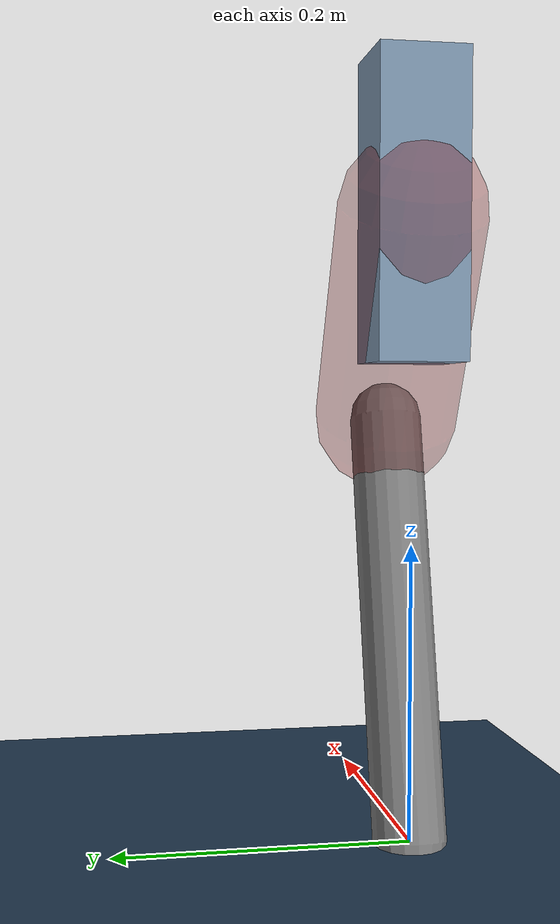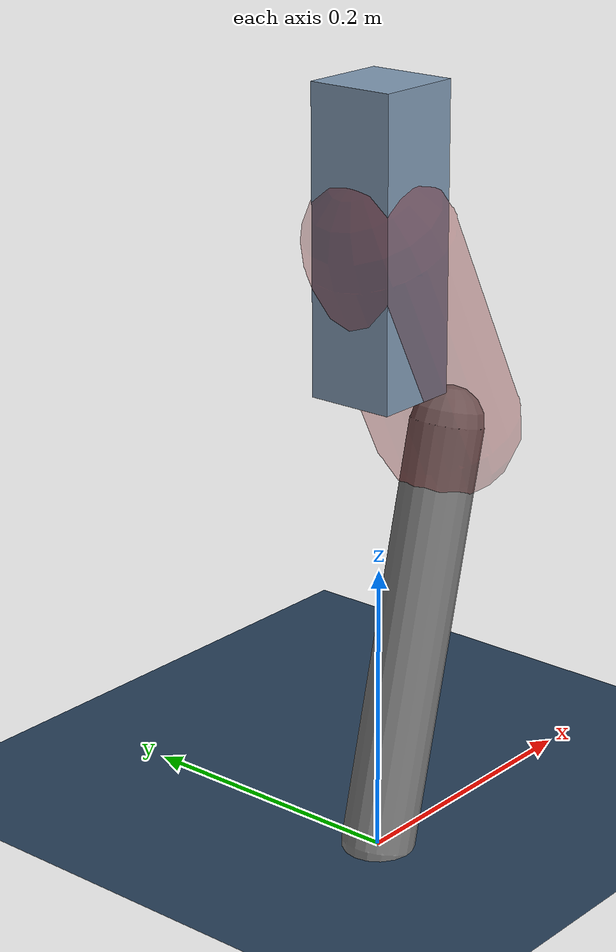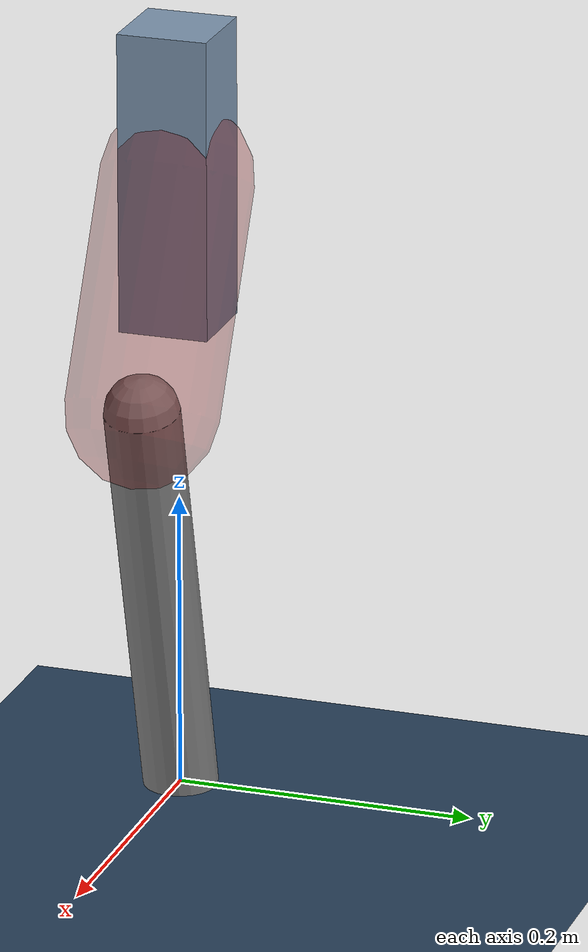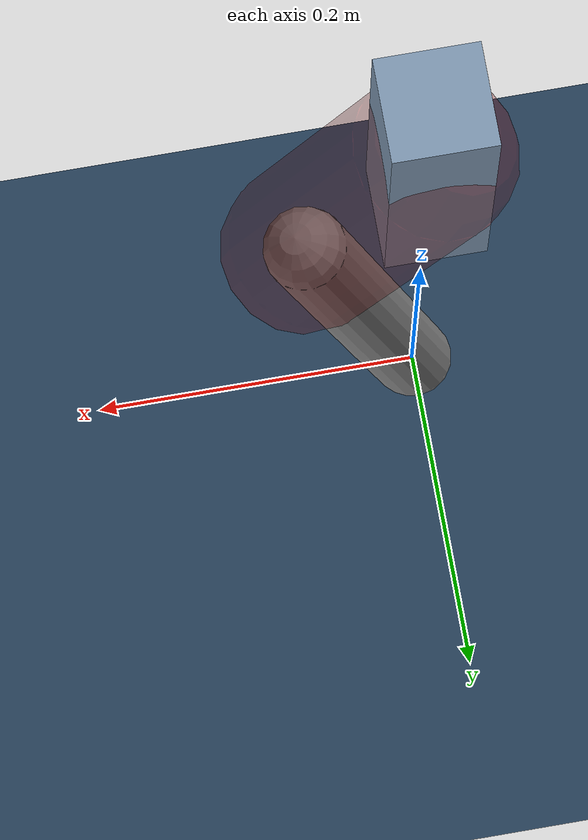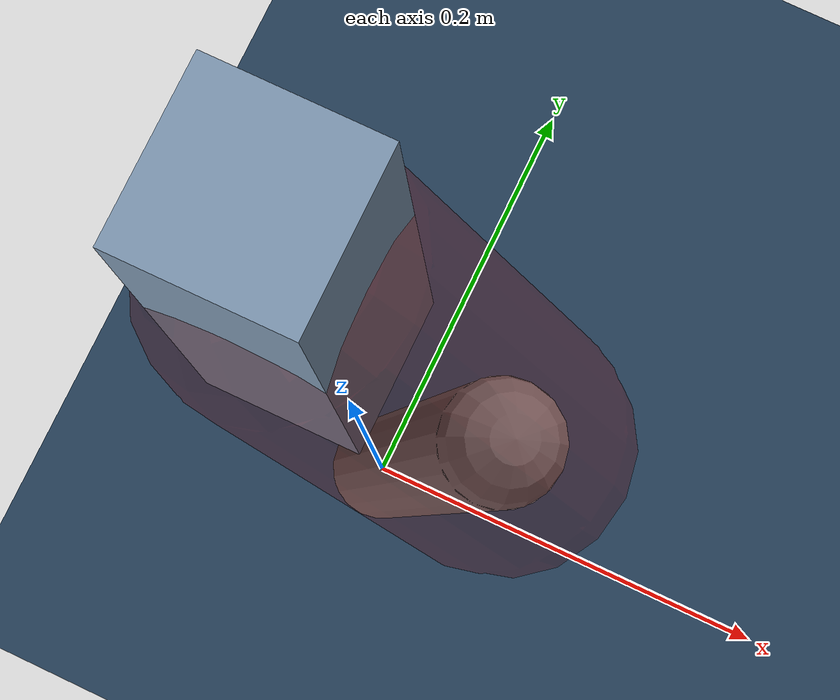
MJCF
<mujoco model="Hopper2D">
	<compiler inertiafromgeom="true" angle="radian" />
	<option timestep="0.001" integrator="implicit" cone="elliptic" solver="Newton" tolerance="1e-10" />

	<default>
		<geom contype="1" conaffinity="1" condim="3" friction="2 0.005 0.0001" solref="0.005 1" />
		<joint limited="true" damping="0.1" />
	</default>

	<asset>
		<texture name="skybox" type="skybox" builtin="gradient" rgb1=".4 .6 .8" rgb2="0 0 0" width="800" height="800" />
		<texture name="grid" type="2d" builtin="checker" rgb1=".1 .2 .3" rgb2=".2 .3 .4" width="300" height="300" mark="edge" markrgb=".2 .3 .4" />
		<material name="ground" texture="grid" texrepeat="1 1" texuniform="true" reflectance="0.1" />
		<material name="leg" rgba="0.5 0.6 0.7 1" />
	</asset>

	<worldbody>

		<geom name="floor" type="plane" size="5 5 0.25" material="ground" />

		<light directional="false" diffuse="0.8 0.8 0.8" specular="0.3 0.3 0.3" pos="0 0 2" dir="0 0 -1" />
		<light mode="targetbodycom" target="base" directional="false" diffuse="0.8 0.8 0.8" specular="0.3 0.3 0.3" pos="0 0 2" dir="0 0 -1" />

		<camera name="fixed" pos="0 -2 1" xyaxes="1 0 0 0 0 1" />
		<camera name="tracking" mode="trackcom" pos="0 -3 1" />

		<body name="root" pos="0 0 0.4206809083771258">
			<joint name="slide_x" type="slide" axis="1 0 0" range="-100 100" />
			<joint name="slide_z" type="slide" axis="0 0 1" range="0 10" />

			<body name="base" pos="0 0 0">
				<geom name="torso" type="box" size="0.03 0.03 0.1" mass="1.868" material="leg" />

				<body name="link1" pos="0 0 0" euler="0 1.0943826782384785 0">
					<joint type="hinge" axis="0 -1 0" pos="0 0 0" name="hinge1" limited="true" range="-3.14 3.14" stiffness="0" damping="0.1" />
					<geom name="thigh" type="capsule" fromto="0 0 0 0.1541644095143544 0 0" size="0.05" rgba="0.5 0 0 0.3" mass="0.6183945828344506" />

					<body name="link2" pos="0.1541644095143544 0 0" euler="0 0.7206562826707006 0">
						<joint type="hinge" axis="0 -1 0" pos="0 0 0" name="hinge2" limited="true" range="-3.14 3.14" stiffness="0" damping="0.1" />
						<geom name="shank" type="capsule" fromto="0 0 0 0.29236046696176443 0 0" size="0.025" mass="0.4771883735694116" />

					</body>
				</body>
			</body>
		</body>
	</worldbody>

	<actuator>
		<motor name="torque1" joint="hinge1" ctrlrange="-32.10740267235471 32.10740267235471" ctrllimited="true" gear="1" />
		<motor name="torque2" joint="hinge2" ctrlrange="-23.944514983591187 23.944514983591187" ctrllimited="true" gear="1" />
	</actuator>
</mujoco>
